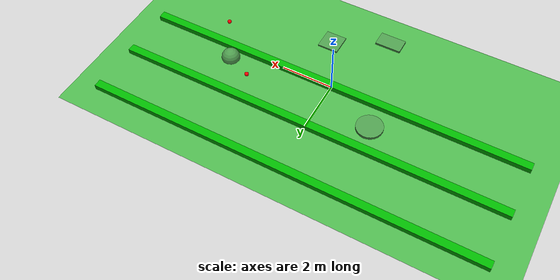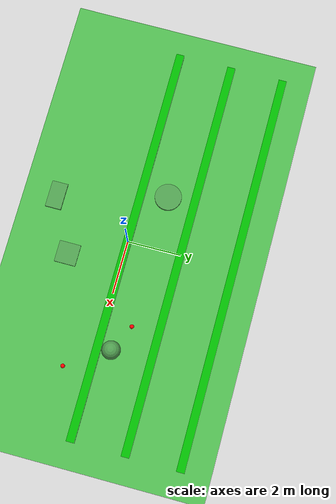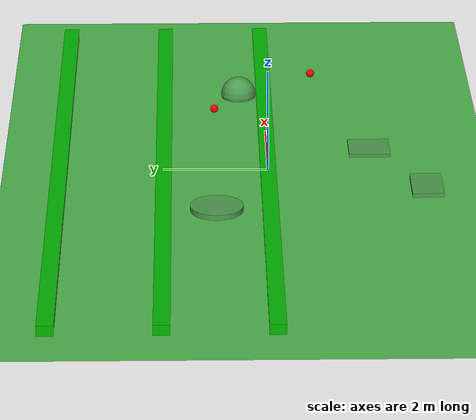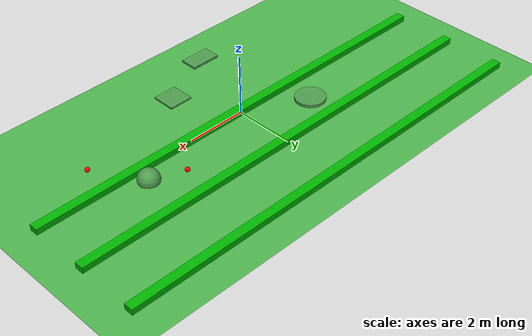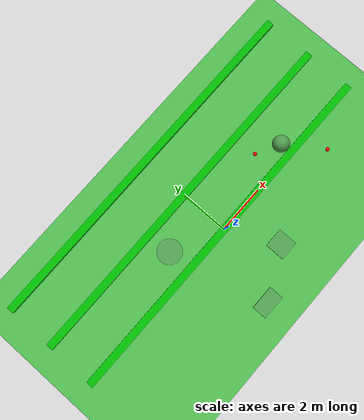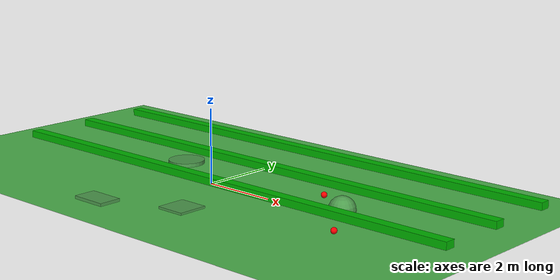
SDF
<?xml version="1.0"?>
<sdf version="1.9">
  <world name="crop_field">

    <!-- Directional Light (Sun) -->
    <light name="sun" type="directional">
      <pose>0 0 10 0 0 0</pose>
      <diffuse>0.9 0.9 0.9 1</diffuse>
      <specular>0.2 0.2 0.2 1</specular>
      <direction>-0.5 -0.5 -1</direction>
      <cast_shadows>true</cast_shadows>
    </light>

    <!-- Ambient world lighting -->
    <light name="ambient" type="point">
      <pose>0 0 10 0 0 0</pose>
      <diffuse>0.3 0.3 0.3 1</diffuse>
      <specular>0.1 0.1 0.1 1</specular>
      <attenuation>
        <range>50</range>
        <constant>0.5</constant>
        <linear>0.01</linear>
        <quadratic>0.001</quadratic>
      </attenuation>
    </light>

    <!-- Ground Plane -->
    <model name="ground_plane">
      <static>true</static>
      <link name="link">
        <collision name="collision">
          <geometry>
            <plane>
              <normal>0 0 1</normal>
              <size>20 20</size>
            </plane>
          </geometry>
        </collision>
        <visual name="visual">
          <geometry>
            <plane>
              <normal>0 0 1</normal>
              <size>20 20</size>
            </plane>
          </geometry>
          <material>
            <ambient>0.2 0.5 0.2 1</ambient>
            <diffuse>0.3 0.7 0.3 1</diffuse>
          </material>
        </visual>
      </link>
    </model>

    <!-- Small unevenness bumps to simulate rough / uneven terrain -->
    <!-- These are static small mounds placed across the field -->
    <model name="bump_1">
      <static>true</static>
      <pose>-2 1 0.05 0 0 0</pose>
      <link name="link">
        <visual name="visual">
          <geometry><cylinder><radius>0.5</radius><length>0.1</length></cylinder></geometry>
          <material><ambient>0.25 0.45 0.2 1</ambient><diffuse>0.3 0.6 0.3 1</diffuse></material>
        </visual>
        <collision name="collision"><geometry><cylinder><radius>0.5</radius><length>0.1</length></cylinder></geometry></collision>
      </link>
    </model>

    <model name="bump_2">
      <static>true</static>
      <pose>1 -2 0.03 0 0 0</pose>
      <link name="link">
        <visual name="visual">
          <geometry><box><size>0.8 0.8 0.06</size></box></geometry>
          <material><ambient>0.25 0.45 0.2 1</ambient><diffuse>0.3 0.6 0.3 1</diffuse></material>
        </visual>
        <collision name="collision"><geometry><box><size>0.8 0.8 0.06</size></box></geometry></collision>
      </link>
    </model>

    <model name="bump_3">
      <static>true</static>
      <pose>4 0.5 0.04 0 0 0</pose>
      <link name="link">
        <visual name="visual">
          <geometry><sphere><radius>0.35</radius></sphere></geometry>
          <material><ambient>0.25 0.45 0.2 1</ambient><diffuse>0.3 0.6 0.3 1</diffuse></material>
        </visual>
        <collision name="collision"><geometry><sphere><radius>0.35</radius></sphere></geometry></collision>
      </link>
    </model>

    <model name="bump_4">
      <static>true</static>
      <pose>-1 -3 0.06 0 0 0</pose>
      <link name="link">
        <visual name="visual">
          <geometry><box><size>1.0 0.6 0.08</size></box></geometry>
          <material><ambient>0.25 0.45 0.2 1</ambient><diffuse>0.3 0.6 0.3 1</diffuse></material>
        </visual>
        <collision name="collision"><geometry><box><size>1.0 0.6 0.08</size></box></geometry></collision>
      </link>
    </model>

    <!-- Crop Rows -->
    <model name="crop_row_1">
      <static>true</static>
      <pose>0 4 0.1 0 0 0</pose>
      <link name="link">
        <visual name="visual">
          <geometry>
            <box><size>15 0.3 0.2</size></box>
          </geometry>
          <material>
            <ambient>0 0.6 0 1</ambient>
            <diffuse>0 0.7 0 1</diffuse>
          </material>
        </visual>
      </link>
    </model>

    <model name="crop_row_2">
      <static>true</static>
      <pose>0 2 0.1 0 0 0</pose>
      <link name="link">
        <visual name="visual">
          <geometry>
            <box><size>15 0.3 0.2</size></box>
          </geometry>
          <material>
            <ambient>0 0.6 0 1</ambient>
            <diffuse>0 0.7 0 1</diffuse>
          </material>
        </visual>
      </link>
    </model>

    <model name="crop_row_3">
      <static>true</static>
      <pose>0 0 0.1 0 0 0</pose>
      <link name="link">
        <visual name="visual">
          <geometry>
            <box><size>15 0.3 0.2</size></box>
          </geometry>
          <material>
            <ambient>0 0.6 0 1</ambient>
            <diffuse>0 0.7 0 1</diffuse>
          </material>
        </visual>
      </link>
    </model>

    <!-- Weeds -->
    <model name="weed_1">
      <pose>3 1 0.1 0 0 0</pose>
      <link name="link">
        <visual name="visual">
          <geometry><sphere><radius>0.08</radius></sphere></geometry>
          <material><ambient>1 0 0 1</ambient><diffuse>1 0 0 1</diffuse></material>
        </visual>
      </link>
    </model>

    <model name="weed_2">
      <pose>5 -1 0.1 0 0 0</pose>
      <link name="link">
        <visual name="visual">
          <geometry><sphere><radius>0.08</radius></sphere></geometry>
          <material><ambient>1 0 0 1</ambient><diffuse>1 0 0 1</diffuse></material>
        </visual>
      </link>
    </model>

    <model name="weed_3">
      <pose>7 2 0.1 0 0 0</pose>
      <link name="link">
        <visual name="visual">
          <geometry><sphere><radius>0.08</radius></sphere></geometry>
          <material><ambient>1 0 0 1</ambient><diffuse>1 0 0 1</diffuse></material>
        </visual>
      </link>
    </model>

    <!-- Camera pose -->
    <gui>
      <camera name="user_camera">
        <pose>0 -15 5 0.7 0 0</pose>
      </camera>
    </gui>

  </world>
</sdf>
